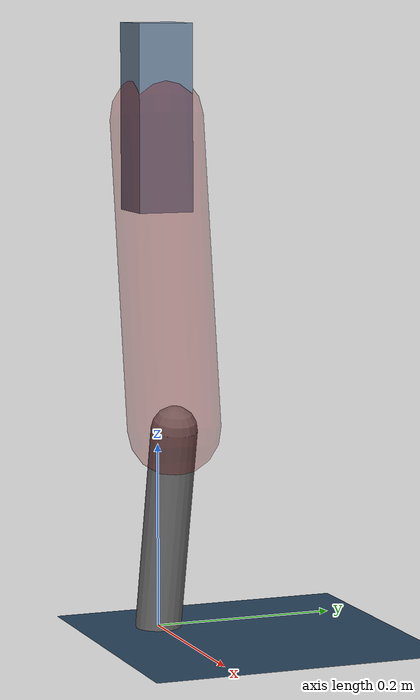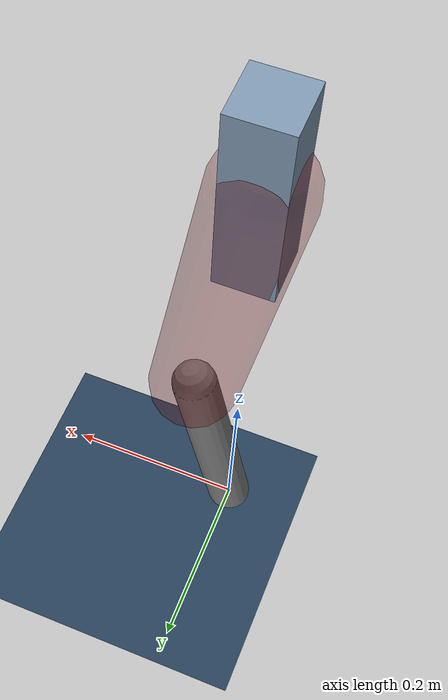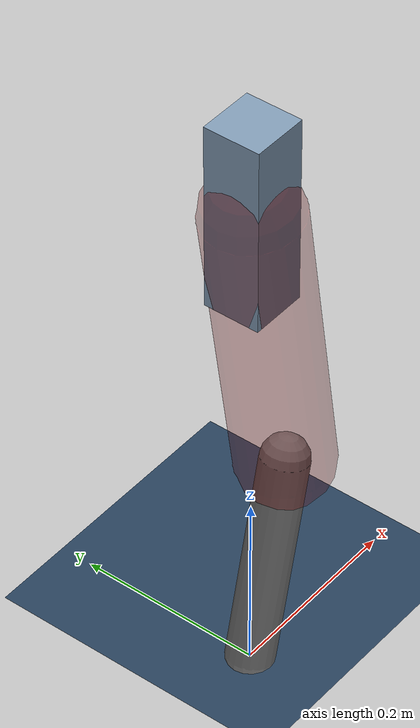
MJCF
<mujoco model="Hopper2D">
	<compiler inertiafromgeom="true" angle="radian" />
	<option timestep="0.001" integrator="implicit" cone="elliptic" solver="Newton" tolerance="1e-10" />

	<default>
		<geom contype="1" conaffinity="1" condim="3" friction="2 0.005 0.0001" solref="0.005 1" />
		<joint limited="true" damping="0.1" />
	</default>

	<asset>
		<texture name="skybox" type="skybox" builtin="gradient" rgb1=".4 .6 .8" rgb2="0 0 0" width="800" height="800" />
		<texture name="grid" type="2d" builtin="checker" rgb1=".1 .2 .3" rgb2=".2 .3 .4" width="300" height="300" mark="edge" markrgb=".2 .3 .4" />
		<material name="ground" texture="grid" texrepeat="1 1" texuniform="true" reflectance="0.1" />
		<material name="leg" rgba="0.5 0.6 0.7 1" />
	</asset>

	<worldbody>

		<geom name="floor" type="plane" size="5 5 0.25" material="ground" />

		<light directional="false" diffuse="0.8 0.8 0.8" specular="0.3 0.3 0.3" pos="0 0 2" dir="0 0 -1" />
		<light mode="targetbodycom" target="base" directional="false" diffuse="0.8 0.8 0.8" specular="0.3 0.3 0.3" pos="0 0 2" dir="0 0 -1" />

		<camera name="fixed" pos="0 -2 1" xyaxes="1 0 0 0 0 1" />
		<camera name="tracking" mode="trackcom" pos="0 -3 1" />

		<body name="root" pos="0 0 0.5536215161862899">
			<joint name="slide_x" type="slide" axis="1 0 0" range="-100 100" />
			<joint name="slide_z" type="slide" axis="0 0 1" range="0 10" />

			<body name="base" pos="0 0 0">
				<geom name="torso" type="box" size="0.03 0.03 0.1" mass="3.503" material="leg" />

				<body name="link1" pos="0 0 0" euler="0 1.414228161255815 0">
					<joint type="hinge" axis="0 -1 0" pos="0 0 0" name="hinge1" limited="true" range="-3.14 3.14" stiffness="0" damping="0.1" />
					<geom name="thigh" type="capsule" fromto="0 0 0 0.33307238452042826 0 0" size="0.05" rgba="0.5 0 0 0.3" mass="1.0793954382051563" />

					<body name="link2" pos="0.33307238452042826 0 0" euler="0 0.38378801484543307 0">
						<joint type="hinge" axis="0 -1 0" pos="0 0 0" name="hinge2" limited="true" range="-3.14 3.14" stiffness="0" damping="0.1" />
						<geom name="shank" type="capsule" fromto="0 0 0 0.23054913166586155 0 0" size="0.025" mass="0.42643930533268926" />

					</body>
				</body>
			</body>
		</body>
	</worldbody>

	<actuator>
		<motor name="torque1" joint="hinge1" ctrlrange="-201.40942698161382 201.40942698161382" ctrllimited="true" gear="1" />
		<motor name="torque2" joint="hinge2" ctrlrange="-50.91365969063546 50.91365969063546" ctrllimited="true" gear="1" />
	</actuator>
</mujoco>
